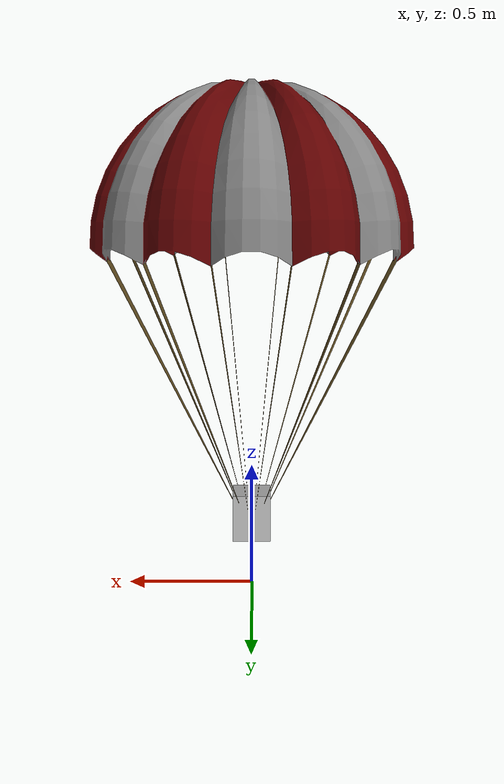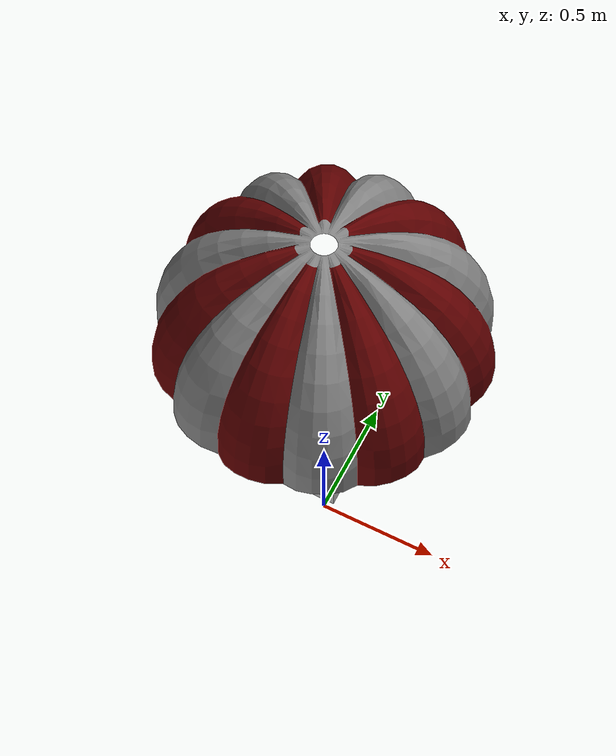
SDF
<?xml version="1.0" ?>
<sdf version="1.5">
  <model name="parachute_package">
    <include>
      <uri>model://parachute_small</uri>
      <pose>0 0 0.2 0 0 0</pose>
    </include>
    <link name="base_link">
      <pose>0 0 0  0 0 0</pose>
      <inertial>
        <pose>0 0 0  0 0 0</pose>
        <mass>1.00</mass>
        <inertia>
          <ixx>0.010000</ixx>
          <ixy>0.000000</ixy>
          <ixz>0.000000</ixz>
          <iyy>0.010000</iyy>
          <iyz>0.000000</iyz>
          <izz>0.010000</izz>
        </inertia>
      </inertial>
      <collision name="collision">
        <pose>0 0 0.3  0 0 0</pose>
        <geometry>
          <box>
              <size>0.15 0.1 0.18</size>
          </box>
        </geometry>
	      <surface>
          <contact>
            <ode>
              <max_vel>0.1</max_vel>
              <min_depth>0.001</min_depth>
            </ode>
          </contact>
        </surface>
      </collision>
      <visual name="visual">
        <pose>0 0 0.3  0 0 0</pose>
        <geometry>
          <mesh>
            <scale>0.125 0.125 0.125</scale>
            <uri>model://big_box/meshes/big_box.dae</uri>
          </mesh>
	      </geometry>
      </visual>
    </link>
    <joint name='parachute_joint' type='revolute'>
      <child>base_link</child>
      <parent>parachute_small::chute</parent>
      <axis>
        <xyz>1 0 0</xyz>
        <limit>
          <lower>0</lower>
          <upper>0</upper>
          <effort>0</effort>
          <velocity>0</velocity>
        </limit>
        <dynamics>
          <spring_reference>0</spring_reference>
          <spring_stiffness>0</spring_stiffness>
        </dynamics>
        <use_parent_model_frame>1</use_parent_model_frame>
      </axis>
    </joint>
    </model>
</sdf>

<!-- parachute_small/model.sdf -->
<sdf version="1.5">
  <model name="parachute_small">
    <pose>0 0 0 0 0 0</pose>
    <static>false</static>

    <link name="chute">
      <pose>0 0 0  0 0 0</pose>
      <inertial>
        <pose>0 0 0  0 0 0</pose>
        <mass>0.100000</mass>
        <inertia>
          <ixx>0.010000</ixx>
          <ixy>0.000000</ixy>
          <ixz>0.000000</ixz>
          <iyy>0.010000</iyy>
          <iyz>0.000000</iyz>
          <izz>0.010000</izz>
        </inertia>
      </inertial>
      <collision name="parachute_collision">
        <pose>0 0 1.25  0 0 0</pose>
        <geometry>
          <cylinder>
            <radius>0.35</radius>
            <length>0.4</length>
          </cylinder>
        </geometry>
      </collision>
      <visual name="parachute_vis">
        <pose>-0.000000 0.000000 0.000000 0.000000 -0.000000 0.000000</pose>
        <geometry>
          <mesh>
            <scale>1 1 1</scale>
            <uri>model://parachute_small/meshes/parachute_small.dae</uri>
          </mesh>
        </geometry>
      </visual>
      <velocity_decay />
    </link>

    <plugin name="parachute_drag" filename="libLiftDragPlugin.so">
      <a0>0</a0>
      <cla>0</cla>
      <cda>1.114</cda>  <!-- Such that Cd = 1.75 at alpha = 90deg (= upright parachute) -->
      <cma>0</cma>
      <alpha_stall>1.5708</alpha_stall> <!-- = upright parachute -->
      <cla_stall>0</cla_stall>
      <cda_stall>0.01</cda_stall>
      <cma_stall>0</cma_stall>
      <cp>0 0 1.25</cp>   <!-- About the vertical center of the chute -->
      <area>3</area>   <!-- Area of a circle of diameter 1m = 0.79, 3m2 is for a better visualization -->
      <air_density>1.2041</air_density>
      <forward>1 0 0</forward>
      <upward>0 0 1</upward>
      <link_name>chute</link_name>
    </plugin>

  </model>
</sdf>
